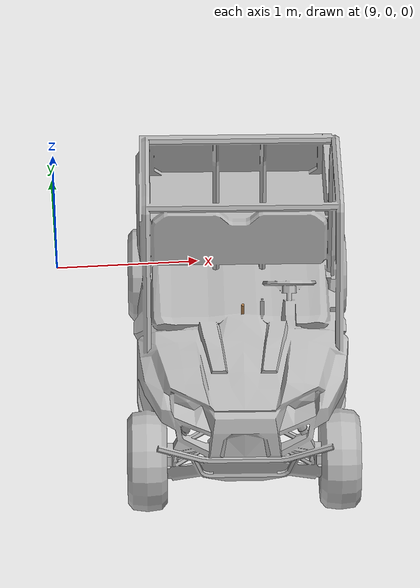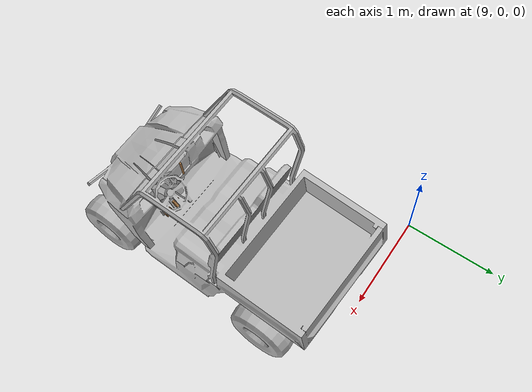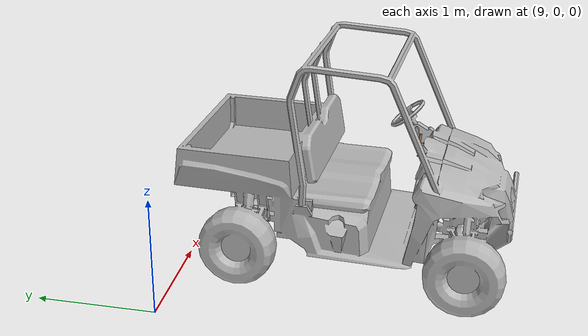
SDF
<sdf version="1.6">
 <world name="default">
  <model name="polaris_ranger_ev_clone_6">
   <static>true</static>
   <link name="chassis">
    <inertial>
     <mass>720</mass>
     <inertia><ixx>140</ixx><ixy>0</ixy><iyy>550</iyy><ixz>0</ixz><iyz>0</iyz><izz>550</izz></inertia>
    </inertial>
    <visual name="visual">
     <pose>0 0 0 0 0 -1.5708</pose>
     <geometry><mesh><uri>model://polaris_ranger_ev/meshes/polaris.dae</uri><scale>1 1 1</scale></mesh></geometry>
     <material>
      <script>
       <uri>model://polaris_ranger_ev/materials/scripts</uri>
       <uri>model://polaris_ranger_ev/materials/textures</uri>
       <name>Polaris/Diffuse</name>
      </script>
     </material>
    </visual>
    <collision name="chassis_bottom">
     <pose>0 0 0.35 0 -0 0</pose>
     <geometry><box><size>2 1 0.1</size></box></geometry>
    </collision>
    <collision name="cargo_bottom">
     <pose>-0.9 0 0.9 0 -0 0</pose>
     <geometry><box><size>0.9 1.2 0.01</size></box></geometry>
    </collision>
    <collision name="cargo_front">
     <pose>-0.45 0 1.025 0 -0 0</pose>
     <geometry><box><size>0.05 1.2 0.25</size></box></geometry>
    </collision>
    <collision name="cargo_back">
     <pose>-1.35 0 1.025 0 -0 0</pose>
     <geometry><box><size>0.05 1.2 0.25</size></box></geometry>
    </collision>
    <collision name="cargo_left">
     <pose>-0.9 0.6 1.025 0 -0 0</pose>
     <geometry><box><size>0.9 0.05 0.25</size></box></geometry>
    </collision>
    <collision name="cargo_right">
     <pose>-0.9 -0.6 1.025 0 -0 0</pose>
     <geometry><box><size>0.9 0.05 0.25</size></box></geometry>
    </collision>
    <collision name="seat">
     <pose>-0.1 0 0.625 0 -0 0</pose>
     <geometry><box><size>0.6 1 0.65</size></box></geometry>
    </collision>
    <collision name="seat_back">
     <pose>-0.3 0 1.125 0 -0.2 0</pose>
     <geometry><box><size>0.1 1 0.4</size></box></geometry>
    </collision>
    <collision name="engine">
     <pose>0.95 0 0.7 0 -0 0</pose>
     <geometry><box><size>0.58 1 0.8</size></box></geometry>
    </collision>
    <collision name="steering_column">
     <pose>0.525 0.3 1.025 0 -0.8 0</pose>
     <geometry><cylinder><radius>0.05</radius><length>0.45</length></cylinder></geometry>
    </collision>
   </link>
   <link name="rear_right_wheel">
    <pose>-0.85 -0.6 0.32 1.5708 -0 0</pose>
    <inertial>
     <mass>12</mass>
     <inertia><ixx>0.5</ixx><ixy>0</ixy><iyy>0.5</iyy><ixz>0</ixz><iyz>0</iyz><izz>1</izz></inertia>
    </inertial>
    <collision name="collision">
     <geometry><cylinder><radius>0.32</radius><length>0.23</length></cylinder></geometry>
     <surface>
      <friction><ode><mu>100000</mu><mu2>100000</mu2><slip1>0</slip1><slip2>0</slip2></ode></friction>
     </surface>
    </collision>
   </link>
   <joint name="rear_right_wheel_joint" type="revolute">
    <pose>0 0 -0.1 0 -0 0</pose>
    <child>rear_right_wheel</child>
    <parent>chassis</parent>
    <axis>
     <xyz>0 1 0</xyz>
     <use_parent_model_frame>1</use_parent_model_frame>
     <limit><lower>-1e+16</lower><upper>1e+16</upper></limit>
     <dynamics><spring_reference>0</spring_reference><spring_stiffness>0</spring_stiffness></dynamics>
    </axis>
    <physics><ode><limit><cfm>0</cfm><erp>0.9</erp></limit></ode></physics>
   </joint>
   <link name="rear_left_wheel">
    <pose>-0.85 0.6 0.32 1.5708 -0 0</pose>
    <inertial>
     <mass>12</mass>
     <inertia><ixx>0.5</ixx><ixy>0</ixy><iyy>0.5</iyy><ixz>0</ixz><iyz>0</iyz><izz>1</izz></inertia>
    </inertial>
    <collision name="collision">
     <geometry><cylinder><radius>0.32</radius><length>0.23</length></cylinder></geometry>
     <surface>
      <friction><ode><mu>100000</mu><mu2>100000</mu2><slip1>0</slip1><slip2>0</slip2></ode></friction>
     </surface>
    </collision>
   </link>
   <joint name="rear_left_wheel_joint" type="revolute">
    <child>rear_left_wheel</child>
    <parent>chassis</parent>
    <axis>
     <xyz>0 1 0</xyz>
     <use_parent_model_frame>1</use_parent_model_frame>
     <limit><lower>-1e+16</lower><upper>1e+16</upper></limit>
     <dynamics><spring_reference>0</spring_reference><spring_stiffness>0</spring_stiffness></dynamics>
    </axis>
    <physics><ode><limit><cfm>0</cfm><erp>0.9</erp></limit></ode></physics>
   </joint>
   <link name="front_right_wheel">
    <pose>1.03 -0.6 0.32 1.5708 -0 0</pose>
    <inertial>
     <mass>12</mass>
     <inertia><ixx>0.5</ixx><ixy>0</ixy><iyy>0.5</iyy><ixz>0</ixz><iyz>0</iyz><izz>1</izz></inertia>
    </inertial>
    <collision name="collision">
     <geometry><cylinder><radius>0.32</radius><length>0.23</length></cylinder></geometry>
     <surface>
      <friction><ode><mu>100000</mu><mu2>100000</mu2><slip1>0</slip1><slip2>0</slip2></ode></friction>
     </surface>
    </collision>
   </link>
   <link name="front_right_wheel_steering_block">
    <pose>1.03 -0.5 0.32 1.5708 -0 0</pose>
    <inertial>
     <mass>1</mass>
     <inertia><ixx>1</ixx><ixy>0</ixy><iyy>1</iyy><ixz>0</ixz><iyz>0</iyz><izz>1</izz></inertia>
    </inertial>
    <collision name="collision">
     <geometry><cylinder><radius>0.05</radius><length>0.01</length></cylinder></geometry>
    </collision>
   </link>
   <joint name="front_right_steering_joint" type="revolute">
    <child>front_right_wheel_steering_block</child>
    <parent>chassis</parent>
    <axis>
     <xyz>0 0 1</xyz>
     <limit><lower>-1</lower><upper>1</upper></limit>
     <use_parent_model_frame>1</use_parent_model_frame>
     <dynamics><spring_reference>0</spring_reference><spring_stiffness>0</spring_stiffness></dynamics>
    </axis>
    <physics><ode><limit><cfm>0</cfm><erp>0.9</erp></limit></ode></physics>
   </joint>
   <joint name="front_right_wheel_joint" type="revolute">
    <child>front_right_wheel</child>
    <parent>front_right_wheel_steering_block</parent>
    <axis>
     <xyz>0 1 0</xyz>
     <use_parent_model_frame>1</use_parent_model_frame>
     <limit><lower>-1e+16</lower><upper>1e+16</upper></limit>
     <dynamics><spring_reference>0</spring_reference><spring_stiffness>0</spring_stiffness></dynamics>
    </axis>
    <physics><ode><limit><cfm>0</cfm><erp>0.9</erp></limit></ode></physics>
   </joint>
   <link name="front_left_wheel">
    <pose>1.03 0.6 0.32 1.5708 -0 0</pose>
    <inertial>
     <mass>12</mass>
     <inertia><ixx>0.5</ixx><ixy>0</ixy><iyy>0.5</iyy><ixz>0</ixz><iyz>0</iyz><izz>1</izz></inertia>
    </inertial>
    <collision name="collision">
     <geometry><cylinder><radius>0.32</radius><length>0.23</length></cylinder></geometry>
     <surface>
      <friction><ode><mu>100000</mu><mu2>100000</mu2><slip1>0</slip1><slip2>0</slip2></ode></friction>
     </surface>
    </collision>
   </link>
   <link name="front_left_wheel_steering_block">
    <pose>1.03 0.5 0.32 1.5708 -0 0</pose>
    <inertial>
     <mass>1</mass>
     <inertia><ixx>1</ixx><ixy>0</ixy><iyy>1</iyy><ixz>0</ixz><iyz>0</iyz><izz>1</izz></inertia>
    </inertial>
    <collision name="collision">
     <geometry><cylinder><radius>0.05</radius><length>0.01</length></cylinder></geometry>
    </collision>
   </link>
   <joint name="front_left_steering_joint" type="revolute">
    <child>front_left_wheel_steering_block</child>
    <parent>chassis</parent>
    <axis>
     <xyz>0 0 1</xyz>
     <limit><lower>-1</lower><upper>1</upper></limit>
     <use_parent_model_frame>1</use_parent_model_frame>
     <dynamics><spring_reference>0</spring_reference><spring_stiffness>0</spring_stiffness></dynamics>
    </axis>
    <physics><ode><limit><cfm>0</cfm><erp>0.9</erp></limit></ode></physics>
   </joint>
   <joint name="front_left_wheel_joint" type="revolute">
    <child>front_left_wheel</child>
    <parent>front_left_wheel_steering_block</parent>
    <axis>
     <xyz>0 1 0</xyz>
     <use_parent_model_frame>1</use_parent_model_frame>
     <limit><lower>-1e+16</lower><upper>1e+16</upper></limit>
     <dynamics><spring_reference>0</spring_reference><spring_stiffness>0</spring_stiffness></dynamics>
    </axis>
    <physics><ode><limit><cfm>0</cfm><erp>0.9</erp></limit></ode></physics>
   </joint>
   <link name="gas_pedal">
    <pose>0.53 0.14 0.56 0 -1 0</pose>
    <gravity>0</gravity>
    <inertial>
     <mass>0.1</mass>
     <inertia><ixx>0.01</ixx><ixy>0</ixy><ixz>0</ixz><iyy>0.01</iyy><iyz>0</iyz><izz>0.01</izz></inertia>
    </inertial>
    <collision name="gas_pedal_collision"><geometry><box><size>0.12 0.07 0.03</size></box></geometry></collision>
    <visual name="gas_pedal_visual">
     <geometry><box><size>0.12 0.07 0.03</size></box></geometry>
     <material>
      <script><uri>file://media/materials/scripts/gazebo.material</uri><name>Gazebo/Wood</name></script>
      <ambient>0.2 0.2 0.2 1</ambient>
      <diffuse>0.2 0.2 0.2 1</diffuse>
      <specular>0.2 0.2 0.2 1</specular>
      <emissive>0.5 0.5 0.5 1</emissive>
     </material>
    </visual>
   </link>
   <link name="brake_pedal">
    <gravity>0</gravity>
    <pose>0.54 0.27 0.58 0 -1 0</pose>
    <inertial>
     <mass>0.1</mass>
     <inertia><ixx>0.01</ixx><ixy>0</ixy><ixz>0</ixz><iyy>0.01</iyy><iyz>0</iyz><izz>0.01</izz></inertia>
    </inertial>
    <collision name="brake_pedal_collision">
     <geometry><box><size>0.06 0.08 0.03</size></box></geometry>
    </collision>
    <visual name="brake_pedal_visual">
     <geometry><box><size>0.06 0.08 0.03</size></box></geometry>
     <material>
      <script><uri>file://media/materials/scripts/gazebo.material</uri><name>Gazebo/Wood</name></script>
      <ambient>0.2 0.2 0.2 1</ambient>
      <diffuse>0.2 0.2 0.2 1</diffuse>
      <specular>0.2 0.2 0.2 1</specular>
      <emissive>0.5 0.5 0.5 1</emissive>
     </material>
    </visual>
   </link>
   <link name="steering_wheel">
    <pose>0.37 0.3 1.2 0 -0.8 0</pose>
    <inertial>
     <mass>1</mass>
     <inertia><ixx>0.1</ixx><ixy>0</ixy><ixz>0</ixz><iyy>0.1</iyy><iyz>0</iyz><izz>1</izz></inertia>
    </inertial>
    <collision name="steering_wheel_post_left">
     <pose>0 0.08 0 1.5708 -0 0</pose>
     <geometry><cylinder><radius>0.02</radius><length>0.15</length></cylinder></geometry>
    </collision>
    <collision name="steering_wheel_post_right">
     <pose>0 -0.08 0 1.5708 -0 0</pose>
     <geometry><cylinder><radius>0.02</radius><length>0.15</length></cylinder></geometry>
    </collision>
    <collision name="steering_wheel_post_middle">
     <pose>-0.08 0 0 3.14159 1.57079 3.14159</pose>
     <geometry><cylinder><radius>0.02</radius><length>0.15</length></cylinder></geometry>
    </collision>
    <collision name="collision00">
     <pose>0.15 0 0 3.14159 1.57079 -1.57079</pose>
     <geometry><cylinder><length>0.105066</length><radius>0.01</radius></cylinder></geometry>
    </collision>
    <collision name="collision01">
     <pose>0.121353 0.088168 0 3.14159 1.57079 -0.942483</pose>
     <geometry><cylinder><length>0.105066</length><radius>0.01</radius></cylinder></geometry>
    </collision>
    <collision name="collision02">
     <pose>0.046353 0.142658 0 3.14159 1.57079 -0.314163</pose>
     <geometry><cylinder><length>0.105066</length><radius>0.01</radius></cylinder></geometry>
    </collision>
    <collision name="collision03">
     <pose>-0.046353 0.142658 0 3.14159 1.57079 0.314163</pose>
     <geometry><cylinder><length>0.105066</length><radius>0.01</radius></cylinder></geometry>
    </collision>
    <collision name="collision04">
     <pose>-0.121353 0.088168 0 -3.14159 1.57079 0.942483</pose>
     <geometry><cylinder><length>0.105066</length><radius>0.01</radius></cylinder></geometry>
    </collision>
    <collision name="collision05">
     <pose>-0.15 0 0 -3.14159 1.57079 1.57079</pose>
     <geometry><cylinder><length>0.105066</length><radius>0.01</radius></cylinder></geometry>
    </collision>
    <collision name="collision06">
     <pose>-0.121353 -0.088168 0 3.14159 1.57079 2.19912</pose>
     <geometry><cylinder><length>0.105066</length><radius>0.01</radius></cylinder></geometry>
    </collision>
    <collision name="collision07">
     <pose>-0.046353 -0.142658 0 -3.14159 1.57079 2.82743</pose>
     <geometry><cylinder><length>0.105066</length><radius>0.01</radius></cylinder></geometry>
    </collision>
    <collision name="collision08">
     <pose>0.046353 -0.142658 0 3.14159 1.57079 -2.82743</pose>
     <geometry><cylinder><length>0.105066</length><radius>0.01</radius></cylinder></geometry>
    </collision>
    <collision name="collision09">
     <pose>0.121353 -0.088168 0 -3.14159 1.57079 -2.19911</pose>
     <geometry><cylinder><length>0.105066</length><radius>0.01</radius></cylinder></geometry>
    </collision>
   </link>
   <link name="hand_brake">
    <pose>0.5 0 1.05 3.14159 -0.058407 3.14159</pose>
    <inertial>
     <mass>1</mass>
     <pose>0 0 -0.15 0 -0 0</pose>
     <inertia><ixx>0.1</ixx><ixy>0</ixy><ixz>0</ixz><iyy>0.1</iyy><iyz>0</iyz><izz>1</izz></inertia>
    </inertial>
    <collision name="hand_brake_collision">
     <pose>0 0 -0.1 0 -0 0</pose>
     <geometry><cylinder><radius>0.01</radius><length>0.2</length></cylinder></geometry>
    </collision>
    <visual name="hand_brake_visual">
     <pose>0 0 -0.1 0 -0 0</pose>
     <geometry><cylinder><radius>0.01</radius><length>0.2</length></cylinder></geometry>
     <material>
      <script><uri>file://media/materials/scripts/gazebo.material</uri><name>Gazebo/Wood</name></script>
     </material>
    </visual>
   </link>
   <joint name="gas_joint" type="prismatic">
    <parent>chassis</parent>
    <child>gas_pedal</child>
    <axis>
     <xyz>1 0 -1</xyz>
     <limit><lower>0</lower><upper>0.15</upper></limit>
     <use_parent_model_frame>1</use_parent_model_frame>
     <dynamics><spring_reference>0</spring_reference><spring_stiffness>0</spring_stiffness></dynamics>
    </axis>
   </joint>
   <joint name="brake_joint" type="prismatic">
    <parent>chassis</parent>
    <child>brake_pedal</child>
    <axis>
     <xyz>1 0 -0.6</xyz>
     <limit><lower>0</lower><upper>0.15</upper></limit>
     <use_parent_model_frame>1</use_parent_model_frame>
     <dynamics><spring_reference>0</spring_reference><spring_stiffness>0</spring_stiffness></dynamics>
    </axis>
   </joint>
   <joint name="steering_joint" type="revolute">
    <pose>0 0 0 1.5708 -0.8 0</pose>
    <parent>chassis</parent>
    <child>steering_wheel</child>
    <axis>
     <xyz>-1 0 1.023</xyz>
     <limit><lower>-7.853</lower><upper>7.853</upper></limit>
     <use_parent_model_frame>1</use_parent_model_frame>
     <dynamics><spring_reference>0</spring_reference><spring_stiffness>0</spring_stiffness></dynamics>
    </axis>
   </joint>
   <joint name="hand_brake_joint" type="revolute">
    <parent>chassis</parent>
    <child>hand_brake</child>
    <axis>
     <xyz>0 -1 0</xyz>
     <limit><lower>0</lower><upper>0.6</upper></limit>
     <use_parent_model_frame>1</use_parent_model_frame>
     <dynamics><spring_reference>0</spring_reference><spring_stiffness>0</spring_stiffness></dynamics>
    </axis>
   </joint>
   <pose>10.1729 -1.44307 -4.3e-05 0 5e-05 -1.63003</pose>
  </model>
 </world>
</sdf>
